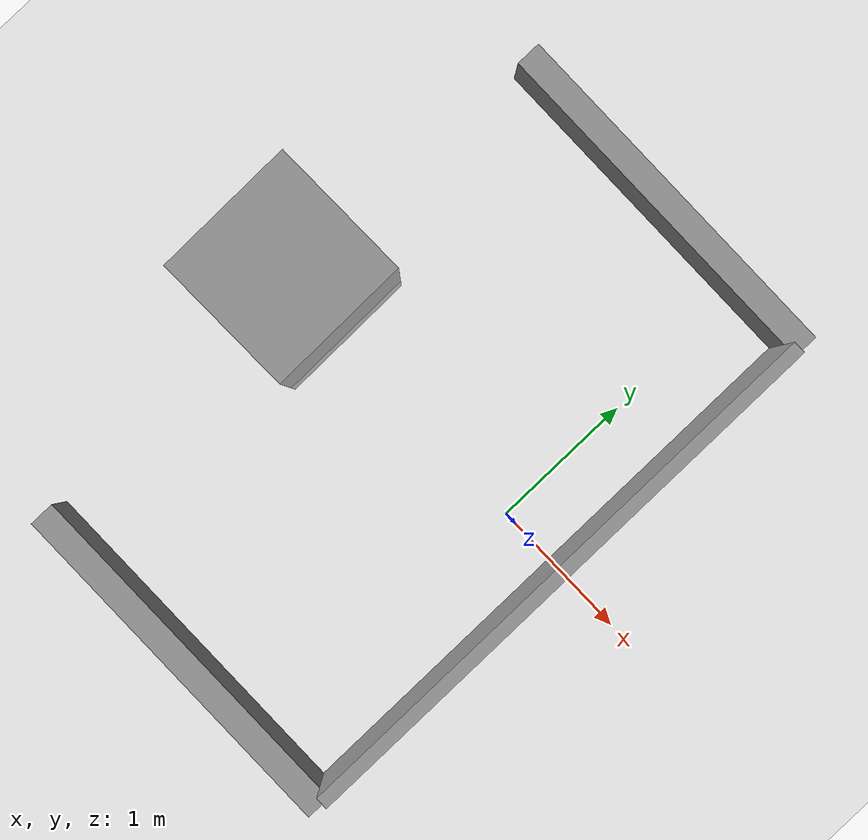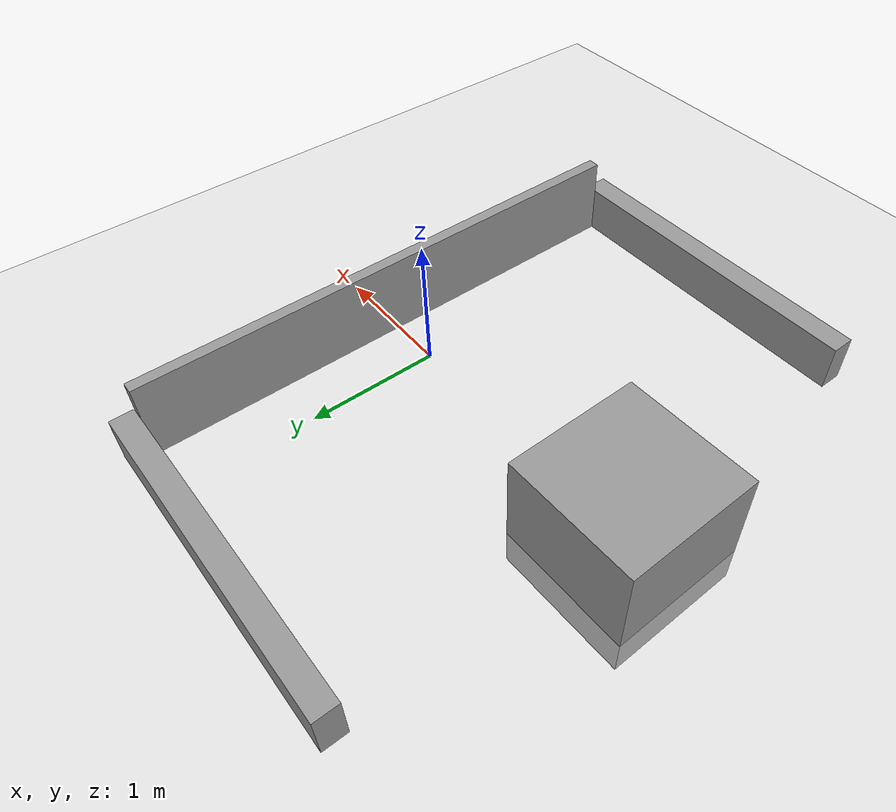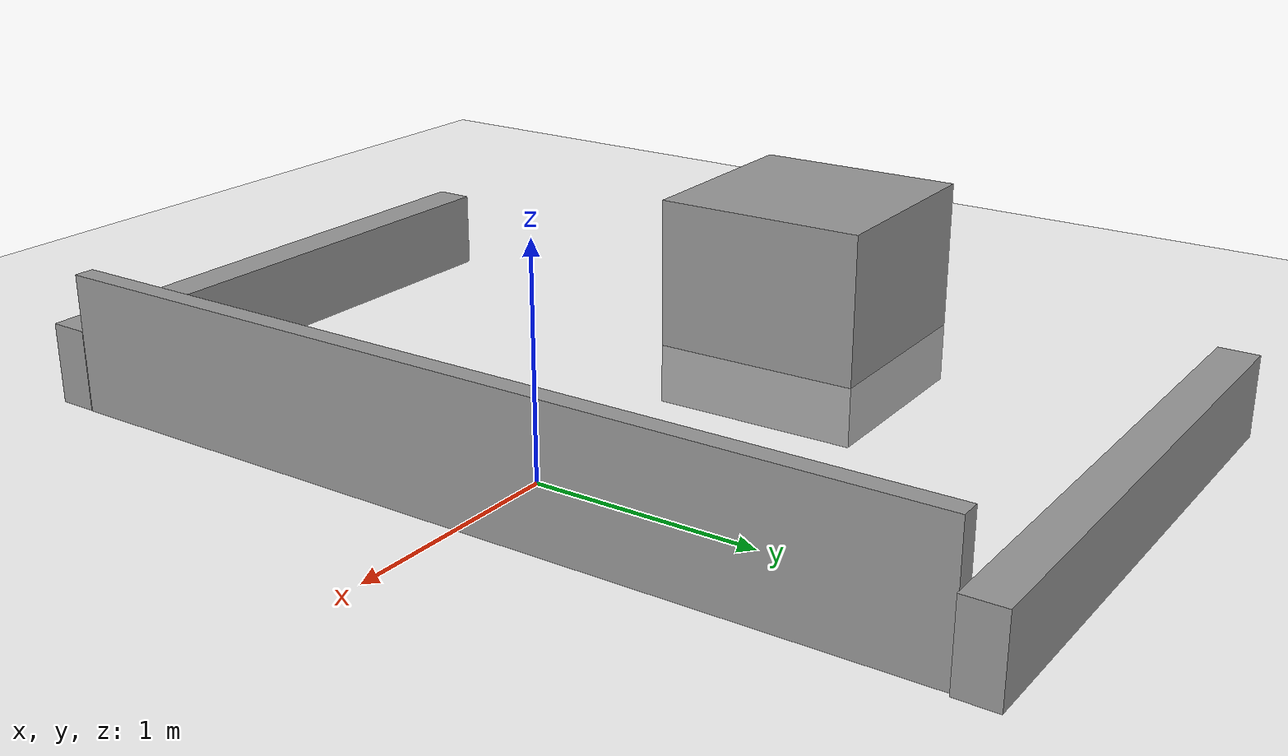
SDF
<sdf version="1.7">
 <world name="default">
  <light name="sun" type="directional">
   <pose>0 0 10 0 -0 0</pose>
   <diffuse>0.8 0.8 0.8 1</diffuse>
   <specular>0.2 0.2 0.2 1</specular>
   <attenuation>
    <range>1000</range>
    <constant>0.9</constant>
    <linear>0.01</linear>
    <quadratic>0.001</quadratic>
   </attenuation>
   <direction>-0.5 0.1 -0.9</direction>
   <spot><inner_angle>0</inner_angle><outer_angle>0</outer_angle><falloff>0</falloff></spot>
  </light>
  <model name="ground_plane">
   <static>1</static>
   <link name="link">
    <collision name="collision">
     <geometry><plane><normal>0 0 1</normal><size>100 100</size></plane></geometry>
     <surface>
      <contact><collide_bitmask>65535</collide_bitmask></contact>
      <friction><ode><mu>100</mu><mu2>50</mu2></ode></friction>
     </surface>
    </collision>
    <visual name="visual">
     <cast_shadows>0</cast_shadows>
     <geometry><plane><normal>0 0 1</normal><size>100 100</size></plane></geometry>
     <material>
      <script><uri>file://media/materials/scripts/gazebo.material</uri><name>Gazebo/Grey</name></script>
     </material>
    </visual>
   </link>
  </model>
  <gravity>0 0 -9.8</gravity>
  <magnetic_field>6e-06 2.3e-05 -4.2e-05</magnetic_field>
  <atmosphere type="adiabatic"/>
  <physics type="ode">
   <max_step_size>0.001</max_step_size>
   <real_time_factor>1</real_time_factor>
   <real_time_update_rate>1000</real_time_update_rate>
  </physics>
  <scene><ambient>0.4 0.4 0.4 1</ambient><background>0.7 0.7 0.7 1</background><shadows>1</shadows></scene>
  <spherical_coordinates>
   <surface_model>EARTH_WGS84</surface_model>
   <latitude_deg>0</latitude_deg>
   <longitude_deg>0</longitude_deg>
   <elevation>0</elevation>
   <heading_deg>0</heading_deg>
  </spherical_coordinates>
  <model name="unit_box">
   <pose>-2.06826 0.037413 0.207125 -0.000539 1.2e-05 0.016595</pose>
   <link name="link">
    <inertial>
     <mass>1</mass>
     <inertia>
      <ixx>0.166667</ixx>
      <ixy>0</ixy>
      <ixz>0</ixz>
      <iyy>0.166667</iyy>
      <iyz>0</iyz>
      <izz>0.166667</izz>
     </inertia>
    </inertial>
    <collision name="collision"><geometry><box><size>1 1 0.999998</size></box></geometry></collision>
    <visual name="visual">
     <geometry><box><size>1 1 0.999998</size></box></geometry>
     <material>
      <script><name>Gazebo/Grey</name><uri>file://media/materials/scripts/gazebo.material</uri></script>
     </material>
    </visual>
   </link>
  </model>
  <model name="unit_box_clone">
   <pose>0.449373 -0.018217 0.30782 0.000487 9e-06 0.004277</pose>
   <link name="link">
    <inertial>
     <mass>1</mass>
     <inertia>
      <ixx>0.166667</ixx>
      <ixy>0</ixy>
      <ixz>0</ixz>
      <iyy>0.166667</iyy>
      <iyz>0</iyz>
      <izz>0.166667</izz>
     </inertia>
    </inertial>
    <collision name="collision">
     <geometry><box><size>0.0883617 4.02195 0.617596</size></box></geometry>
    </collision>
    <visual name="visual">
     <geometry><box><size>0.0883617 4.02195 0.617596</size></box></geometry>
     <material>
      <script><name>Gazebo/Grey</name><uri>file://media/materials/scripts/gazebo.material</uri></script>
     </material>
    </visual>
   </link>
  </model>
  <model name="unit_box_clone_0">
   <pose>-0.763306 -2.11833 0.181261 3e-06 -0.000115 -0.000742</pose>
   <link name="link">
    <inertial>
     <mass>1</mass>
     <inertia>
      <ixx>0.166667</ixx>
      <ixy>0</ixy>
      <ixz>0</ixz>
      <iyy>0.166667</iyy>
      <iyz>0</iyz>
      <izz>0.166667</izz>
     </inertia>
    </inertial>
    <collision name="collision"><geometry><box><size>2.53355 0.176815 0.362812</size></box></geometry></collision>
    <visual name="visual">
     <geometry><box><size>2.53355 0.176815 0.362812</size></box></geometry>
     <material>
      <script><name>Gazebo/Grey</name><uri>file://media/materials/scripts/gazebo.material</uri></script>
     </material>
    </visual>
   </link>
  </model>
  <model name="unit_box_clone_0_clone">
   <pose>-0.762998 2.0827 0.181261 3e-06 -0.000115 -0.000741</pose>
   <link name="link">
    <inertial>
     <mass>1</mass>
     <inertia>
      <ixx>0.166667</ixx>
      <ixy>0</ixy>
      <ixz>0</ixz>
      <iyy>0.166667</iyy>
      <iyz>0</iyz>
      <izz>0.166667</izz>
     </inertia>
    </inertial>
    <collision name="collision"><geometry><box><size>2.53356 0.176815 0.362812</size></box></geometry></collision>
    <visual name="visual">
     <geometry><box><size>2.53356 0.176815 0.362812</size></box></geometry>
     <material>
      <script><name>Gazebo/Grey</name><uri>file://media/materials/scripts/gazebo.material</uri></script>
     </material>
    </visual>
   </link>
  </model>
 </world>
</sdf>
